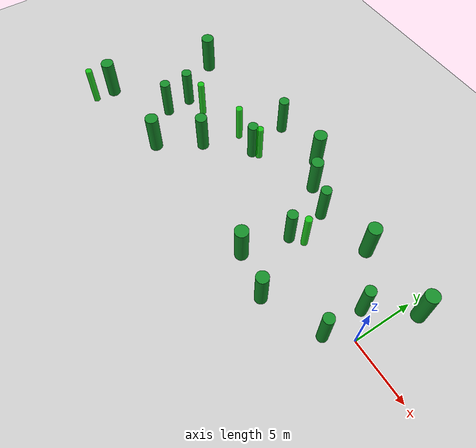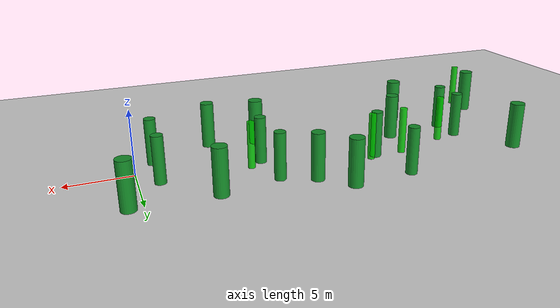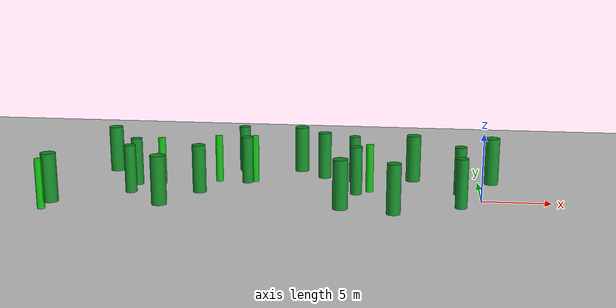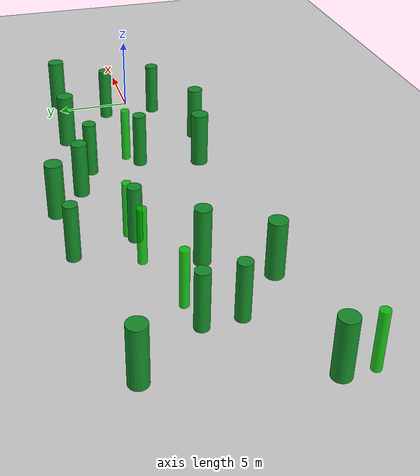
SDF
<sdf version="1.6">
 <world name="long_cylinder_forest_v2">
  <include><uri>model://sun</uri></include>
  <include><uri>model://ground_plane</uri></include>
  <model name="long_forest_cylinder_00">
   <static>true</static>
   <pose>-26.090 1.580 1.800 0 0 0</pose>
   <link name="link">
    <collision name="collision">
     <geometry><cylinder><radius>0.430</radius><length>3.600</length></cylinder></geometry>
    </collision>
    <visual name="visual">
     <geometry><cylinder><radius>0.430</radius><length>3.600</length></cylinder></geometry>
     <material><ambient>0.08 0.55 0.16 0.92</ambient><diffuse>0.08 0.55 0.16 0.92</diffuse></material>
    </visual>
   </link>
  </model>
  <model name="long_forest_cylinder_01">
   <static>true</static>
   <pose>-25.940 -0.650 1.800 0 0 0</pose>
   <link name="link">
    <collision name="collision">
     <geometry><cylinder><radius>0.430</radius><length>3.600</length></cylinder></geometry>
    </collision>
    <visual name="visual">
     <geometry><cylinder><radius>0.430</radius><length>3.600</length></cylinder></geometry>
     <material><ambient>0.08 0.55 0.16 0.92</ambient><diffuse>0.08 0.55 0.16 0.92</diffuse></material>
    </visual>
   </link>
  </model>
  <model name="long_forest_cylinder_02">
   <static>true</static>
   <pose>-18.650 6.900 1.800 0 0 0</pose>
   <link name="link">
    <collision name="collision">
     <geometry><cylinder><radius>0.430</radius><length>3.600</length></cylinder></geometry>
    </collision>
    <visual name="visual">
     <geometry><cylinder><radius>0.430</radius><length>3.600</length></cylinder></geometry>
     <material><ambient>0.08 0.55 0.16 0.92</ambient><diffuse>0.08 0.55 0.16 0.92</diffuse></material>
    </visual>
   </link>
  </model>
  <model name="long_forest_cylinder_03">
   <static>true</static>
   <pose>-17.750 3.130 1.800 0 0 0</pose>
   <link name="link">
    <collision name="collision">
     <geometry><cylinder><radius>0.430</radius><length>3.600</length></cylinder></geometry>
    </collision>
    <visual name="visual">
     <geometry><cylinder><radius>0.430</radius><length>3.600</length></cylinder></geometry>
     <material><ambient>0.08 0.55 0.16 0.92</ambient><diffuse>0.08 0.55 0.16 0.92</diffuse></material>
    </visual>
   </link>
  </model>
  <model name="long_forest_cylinder_04">
   <static>true</static>
   <pose>-9.500 4.290 1.800 0 0 0</pose>
   <link name="link">
    <collision name="collision">
     <geometry><cylinder><radius>0.430</radius><length>3.600</length></cylinder></geometry>
    </collision>
    <visual name="visual">
     <geometry><cylinder><radius>0.430</radius><length>3.600</length></cylinder></geometry>
     <material><ambient>0.08 0.55 0.16 0.92</ambient><diffuse>0.08 0.55 0.16 0.92</diffuse></material>
    </visual>
   </link>
  </model>
  <model name="long_forest_cylinder_05">
   <static>true</static>
   <pose>-9.150 0.900 1.800 0 0 0</pose>
   <link name="link">
    <collision name="collision">
     <geometry><cylinder><radius>0.430</radius><length>3.600</length></cylinder></geometry>
    </collision>
    <visual name="visual">
     <geometry><cylinder><radius>0.430</radius><length>3.600</length></cylinder></geometry>
     <material><ambient>0.08 0.55 0.16 0.92</ambient><diffuse>0.08 0.55 0.16 0.92</diffuse></material>
    </visual>
   </link>
  </model>
  <model name="long_forest_cylinder_06">
   <static>true</static>
   <pose>-1.510 1.770 1.800 0 0 0</pose>
   <link name="link">
    <collision name="collision">
     <geometry><cylinder><radius>0.430</radius><length>3.600</length></cylinder></geometry>
    </collision>
    <visual name="visual">
     <geometry><cylinder><radius>0.430</radius><length>3.600</length></cylinder></geometry>
     <material><ambient>0.08 0.55 0.16 0.92</ambient><diffuse>0.08 0.55 0.16 0.92</diffuse></material>
    </visual>
   </link>
  </model>
  <model name="long_forest_cylinder_07">
   <static>true</static>
   <pose>-1.510 -1.750 1.800 0 0 0</pose>
   <link name="link">
    <collision name="collision">
     <geometry><cylinder><radius>0.430</radius><length>3.600</length></cylinder></geometry>
    </collision>
    <visual name="visual">
     <geometry><cylinder><radius>0.430</radius><length>3.600</length></cylinder></geometry>
     <material><ambient>0.08 0.55 0.16 0.92</ambient><diffuse>0.08 0.55 0.16 0.92</diffuse></material>
    </visual>
   </link>
  </model>
  <model name="long_forest_cylinder_16">
   <static>true</static>
   <pose>-20.850 0.000 1.800 0 0 0</pose>
   <link name="link">
    <collision name="collision">
     <geometry><cylinder><radius>0.500</radius><length>3.600</length></cylinder></geometry>
    </collision>
    <visual name="visual">
     <geometry><cylinder><radius>0.500</radius><length>3.600</length></cylinder></geometry>
     <material><ambient>0.08 0.55 0.16 0.92</ambient><diffuse>0.08 0.55 0.16 0.92</diffuse></material>
    </visual>
   </link>
  </model>
  <model name="long_forest_cylinder_17">
   <static>true</static>
   <pose>-11.950 5.340 1.800 0 0 0</pose>
   <link name="link">
    <collision name="collision">
     <geometry><cylinder><radius>0.500</radius><length>3.600</length></cylinder></geometry>
    </collision>
    <visual name="visual">
     <geometry><cylinder><radius>0.500</radius><length>3.600</length></cylinder></geometry>
     <material><ambient>0.08 0.55 0.16 0.92</ambient><diffuse>0.08 0.55 0.16 0.92</diffuse></material>
    </visual>
   </link>
  </model>
  <model name="long_forest_cylinder_18">
   <static>true</static>
   <pose>-6.230 -3.750 1.800 0 0 0</pose>
   <link name="link">
    <collision name="collision">
     <geometry><cylinder><radius>0.500</radius><length>3.600</length></cylinder></geometry>
    </collision>
    <visual name="visual">
     <geometry><cylinder><radius>0.500</radius><length>3.600</length></cylinder></geometry>
     <material><ambient>0.08 0.55 0.16 0.92</ambient><diffuse>0.08 0.55 0.16 0.92</diffuse></material>
    </visual>
   </link>
  </model>
  <model name="long_forest_cylinder_24">
   <static>true</static>
   <pose>-31.000 -3.800 1.800 0 0 0</pose>
   <link name="link">
    <collision name="collision">
     <geometry><cylinder><radius>0.550</radius><length>3.600</length></cylinder></geometry>
    </collision>
    <visual name="visual">
     <geometry><cylinder><radius>0.550</radius><length>3.600</length></cylinder></geometry>
     <material><ambient>0.08 0.55 0.16 0.92</ambient><diffuse>0.08 0.55 0.16 0.92</diffuse></material>
    </visual>
   </link>
  </model>
  <model name="long_forest_cylinder_25">
   <static>true</static>
   <pose>-29.000 5.500 1.800 0 0 0</pose>
   <link name="link">
    <collision name="collision">
     <geometry><cylinder><radius>0.550</radius><length>3.600</length></cylinder></geometry>
    </collision>
    <visual name="visual">
     <geometry><cylinder><radius>0.550</radius><length>3.600</length></cylinder></geometry>
     <material><ambient>0.08 0.55 0.16 0.92</ambient><diffuse>0.08 0.55 0.16 0.92</diffuse></material>
    </visual>
   </link>
  </model>
  <model name="long_forest_cylinder_26">
   <static>true</static>
   <pose>-23.000 -3.500 1.800 0 0 0</pose>
   <link name="link">
    <collision name="collision">
     <geometry><cylinder><radius>0.550</radius><length>3.600</length></cylinder></geometry>
    </collision>
    <visual name="visual">
     <geometry><cylinder><radius>0.550</radius><length>3.600</length></cylinder></geometry>
     <material><ambient>0.08 0.55 0.16 0.92</ambient><diffuse>0.08 0.55 0.16 0.92</diffuse></material>
    </visual>
   </link>
  </model>
  <model name="long_forest_cylinder_27">
   <static>true</static>
   <pose>-14.000 7.200 1.800 0 0 0</pose>
   <link name="link">
    <collision name="collision">
     <geometry><cylinder><radius>0.550</radius><length>3.600</length></cylinder></geometry>
    </collision>
    <visual name="visual">
     <geometry><cylinder><radius>0.550</radius><length>3.600</length></cylinder></geometry>
     <material><ambient>0.08 0.55 0.16 0.92</ambient><diffuse>0.08 0.55 0.16 0.92</diffuse></material>
    </visual>
   </link>
  </model>
  <model name="long_forest_cylinder_28">
   <static>true</static>
   <pose>-10.000 -3.000 1.800 0 0 0</pose>
   <link name="link">
    <collision name="collision">
     <geometry><cylinder><radius>0.550</radius><length>3.600</length></cylinder></geometry>
    </collision>
    <visual name="visual">
     <geometry><cylinder><radius>0.550</radius><length>3.600</length></cylinder></geometry>
     <material><ambient>0.08 0.55 0.16 0.92</ambient><diffuse>0.08 0.55 0.16 0.92</diffuse></material>
    </visual>
   </link>
  </model>
  <model name="long_forest_cylinder_29">
   <static>true</static>
   <pose>-5.000 5.200 1.800 0 0 0</pose>
   <link name="link">
    <collision name="collision">
     <geometry><cylinder><radius>0.550</radius><length>3.600</length></cylinder></geometry>
    </collision>
    <visual name="visual">
     <geometry><cylinder><radius>0.550</radius><length>3.600</length></cylinder></geometry>
     <material><ambient>0.08 0.55 0.16 0.92</ambient><diffuse>0.08 0.55 0.16 0.92</diffuse></material>
    </visual>
   </link>
  </model>
  <model name="long_forest_cylinder_30">
   <static>true</static>
   <pose>1.000 5.000 1.800 0 0 0</pose>
   <link name="link">
    <collision name="collision">
     <geometry><cylinder><radius>0.550</radius><length>3.600</length></cylinder></geometry>
    </collision>
    <visual name="visual">
     <geometry><cylinder><radius>0.550</radius><length>3.600</length></cylinder></geometry>
     <material><ambient>0.08 0.55 0.16 0.92</ambient><diffuse>0.08 0.55 0.16 0.92</diffuse></material>
    </visual>
   </link>
  </model>
  <model name="v2_spatial_plus">
   <static>false</static>
   <pose>-24.200 1.969 1.800 0 0 0</pose>
   <link name="link">
    <gravity>false</gravity>
    <inertial>
     <mass>1.0</mass>
     <inertia><ixx>0.1</ixx><ixy>0.0</ixy><ixz>0.0</ixz><iyy>0.1</iyy><iyz>0.0</iyz><izz>0.1</izz></inertia>
    </inertial>
    <collision name="collision">
     <geometry><cylinder><radius>0.280</radius><length>3.600</length></cylinder></geometry>
    </collision>
    <visual name="visual">
     <geometry><cylinder><radius>0.280</radius><length>3.600</length></cylinder></geometry>
     <material><ambient>0 0.8 0 0.85</ambient><diffuse>0 0.8 0 0.85</diffuse></material>
    </visual>
   </link>
  </model>
  <model name="v2_spatial_minus">
   <static>false</static>
   <pose>-17.200 3.461 1.800 0 0 0</pose>
   <link name="link">
    <gravity>false</gravity>
    <inertial>
     <mass>1.0</mass>
     <inertia><ixx>0.1</ixx><ixy>0.0</ixy><ixz>0.0</ixz><iyy>0.1</iyy><iyz>0.0</iyz><izz>0.1</izz></inertia>
    </inertial>
    <collision name="collision">
     <geometry><cylinder><radius>0.280</radius><length>3.600</length></cylinder></geometry>
    </collision>
    <visual name="visual">
     <geometry><cylinder><radius>0.280</radius><length>3.600</length></cylinder></geometry>
     <material><ambient>0 0.8 0 0.85</ambient><diffuse>0 0.8 0 0.85</diffuse></material>
    </visual>
   </link>
  </model>
  <model name="v2_temporal_early">
   <static>false</static>
   <pose>-8.200 1.659 1.800 0 0 0</pose>
   <link name="link">
    <gravity>false</gravity>
    <inertial>
     <mass>1.0</mass>
     <inertia><ixx>0.1</ixx><ixy>0.0</ixy><ixz>0.0</ixz><iyy>0.1</iyy><iyz>0.0</iyz><izz>0.1</izz></inertia>
    </inertial>
    <collision name="collision">
     <geometry><cylinder><radius>0.280</radius><length>3.600</length></cylinder></geometry>
    </collision>
    <visual name="visual">
     <geometry><cylinder><radius>0.280</radius><length>3.600</length></cylinder></geometry>
     <material><ambient>0 0.8 0 0.85</ambient><diffuse>0 0.8 0 0.85</diffuse></material>
    </visual>
   </link>
  </model>
  <model name="v2_mixed_early">
   <static>false</static>
   <pose>-20.000 3.228 1.800 0 0 0</pose>
   <link name="link">
    <gravity>false</gravity>
    <inertial>
     <mass>1.0</mass>
     <inertia><ixx>0.1</ixx><ixy>0.0</ixy><ixz>0.0</ixz><iyy>0.1</iyy><iyz>0.0</iyz><izz>0.1</izz></inertia>
    </inertial>
    <collision name="collision">
     <geometry><cylinder><radius>0.280</radius><length>3.600</length></cylinder></geometry>
    </collision>
    <visual name="visual">
     <geometry><cylinder><radius>0.280</radius><length>3.600</length></cylinder></geometry>
     <material><ambient>0 0.8 0 0.85</ambient><diffuse>0 0.8 0 0.85</diffuse></material>
    </visual>
   </link>
  </model>
  <model name="v2_background_low_0">
   <static>false</static>
   <pose>-31.000 -5.579 1.800 0 0 0</pose>
   <link name="link">
    <gravity>false</gravity>
    <inertial>
     <mass>1.0</mass>
     <inertia><ixx>0.1</ixx><ixy>0.0</ixy><ixz>0.0</ixz><iyy>0.1</iyy><iyz>0.0</iyz><izz>0.1</izz></inertia>
    </inertial>
    <collision name="collision">
     <geometry><cylinder><radius>0.280</radius><length>3.600</length></cylinder></geometry>
    </collision>
    <visual name="visual">
     <geometry><cylinder><radius>0.280</radius><length>3.600</length></cylinder></geometry>
     <material><ambient>0 0.8 0 0.85</ambient><diffuse>0 0.8 0 0.85</diffuse></material>
    </visual>
   </link>
  </model>
 </world>
</sdf>
